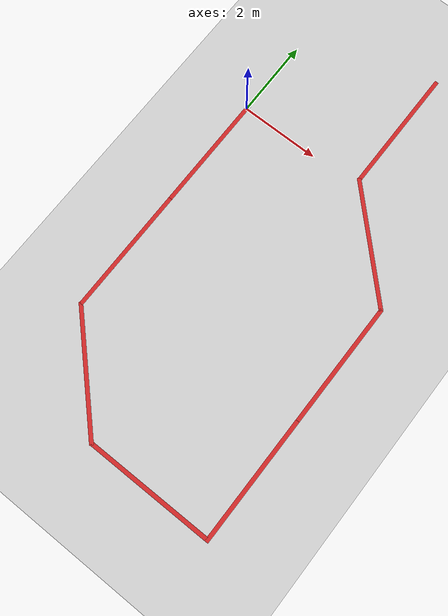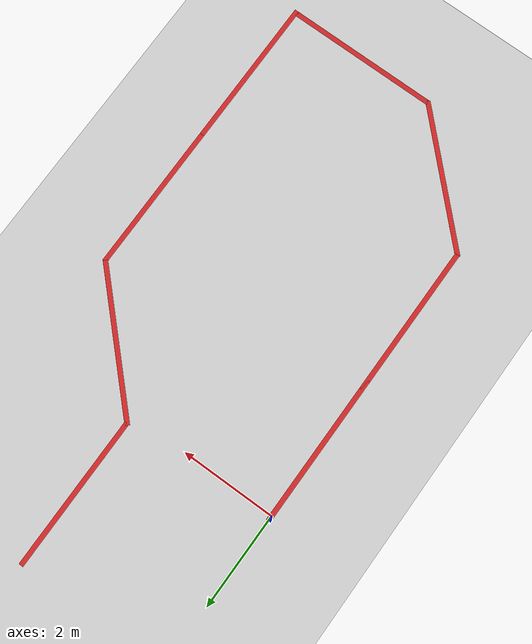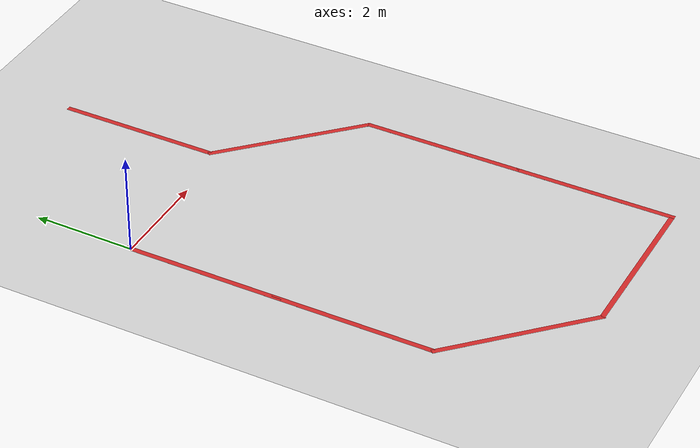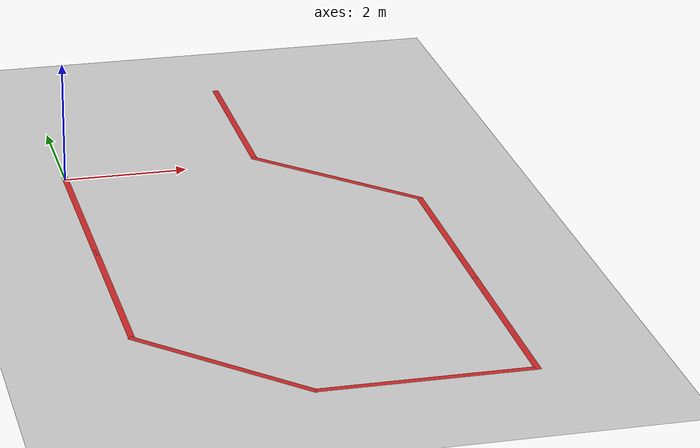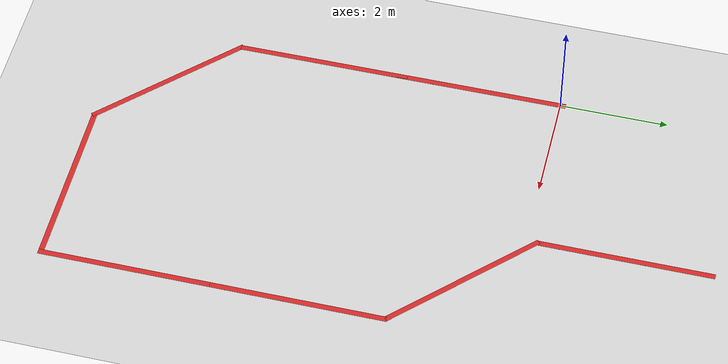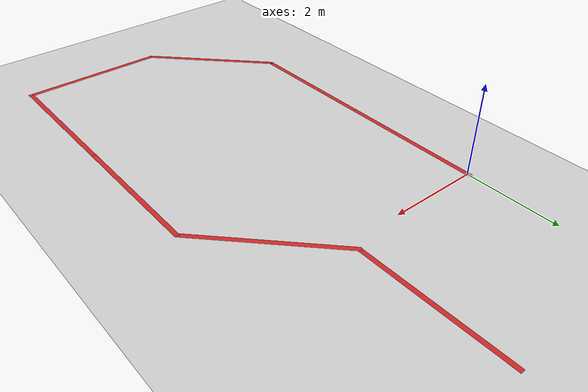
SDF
<sdf version="1.6">
 <world name="default">
  <light name="sun" type="directional">
   <pose>0 0 10 0 -0 0</pose>
   <diffuse>0.8 0.8 0.8 1</diffuse>
   <specular>0.2 0.2 0.2 1</specular>
   <attenuation>
    <range>1000</range>
    <constant>0.9</constant>
    <linear>0.01</linear>
    <quadratic>0.001</quadratic>
   </attenuation>
   <direction>-0.5 0.1 -0.9</direction>
  </light>
  <model name="ground_plane">
   <static>1</static>
   <link name="link">
    <collision name="collision">
     <geometry><plane><normal>0 0 1</normal><size>100 100</size></plane></geometry>
     <surface>
      <contact><collide_bitmask>65535</collide_bitmask></contact>
      <friction><ode><mu>100</mu><mu2>50</mu2></ode></friction>
     </surface>
    </collision>
    <visual name="visual">
     <cast_shadows>0</cast_shadows>
     <geometry><plane><normal>0 0 1</normal><size>100 100</size></plane></geometry>
     <material>
      <script><uri>file://media/materials/scripts/gazebo.material</uri><name>Gazebo/Grey</name></script>
     </material>
    </visual>
   </link>
  </model>
  <gravity>0 0 -9.8</gravity>
  <magnetic_field>6e-06 2.3e-05 -4.2e-05</magnetic_field>
  <atmosphere type="adiabatic"/>
  <physics name="default_physics" default="0" type="ode">
   <max_step_size>0.001</max_step_size>
   <real_time_factor>1</real_time_factor>
   <real_time_update_rate>1000</real_time_update_rate>
  </physics>
  <scene><ambient>0.4 0.4 0.4 1</ambient><background>0.7 0.7 0.7 1</background><shadows>1</shadows></scene>
  <audio><device>default</device></audio>
  <spherical_coordinates>
   <surface_model>EARTH_WGS84</surface_model>
   <latitude_deg>0</latitude_deg>
   <longitude_deg>0</longitude_deg>
   <elevation>0</elevation>
   <heading_deg>0</heading_deg>
  </spherical_coordinates>
  <model name="line">
   <static>1</static>
   <link name="link_ground">
    <collision name="collision">
     <geometry><plane><normal>0 0 1</normal><size>0.1 3.2</size></plane></geometry>
     <surface><friction><ode><mu>100</mu><mu2>50</mu2></ode></friction></surface>
    </collision>
    <visual name="visual_ground">
     <cast_shadows>0</cast_shadows>
     <geometry><plane><normal>0 0 1</normal><size>0.1 3.2</size></plane></geometry>
     <material>
      <script><uri>file://media/materials/scripts/gazebo.material</uri><name>Gazebo/Red</name></script>
     </material>
    </visual>
   </link>
   <pose>0 -1.5 0.01 0 -0 0</pose>
  </model>
  <model name="line_0">
   <static>1</static>
   <link name="link_ground">
    <collision name="collision">
     <geometry><plane><normal>0 0 1</normal><size>0.1 3.2</size></plane></geometry>
     <surface><friction><ode><mu>100</mu><mu2>50</mu2></ode></friction></surface>
    </collision>
    <visual name="visual_ground">
     <cast_shadows>0</cast_shadows>
     <geometry><plane><normal>0 0 1</normal><size>0.1 3.2</size></plane></geometry>
     <material>
      <script><uri>file://media/materials/scripts/gazebo.material</uri><name>Gazebo/Red</name></script>
     </material>
    </visual>
   </link>
   <pose>0 -4.5 0.01 0 -0 0</pose>
  </model>
  <model name="line_1">
   <static>1</static>
   <link name="link_ground">
    <collision name="collision">
     <geometry><plane><normal>0 0 1</normal><size>0.1 3.2</size></plane></geometry>
     <surface><friction><ode><mu>100</mu><mu2>50</mu2></ode></friction></surface>
    </collision>
    <visual name="visual_ground">
     <cast_shadows>0</cast_shadows>
     <geometry><plane><normal>0 0 1</normal><size>0.1 3.2</size></plane></geometry>
     <material>
      <script><uri>file://media/materials/scripts/gazebo.material</uri><name>Gazebo/Red</name></script>
     </material>
    </visual>
   </link>
   <pose>1.1 -7.2 0.01 0 -0 0.785</pose>
  </model>
  <model name="line_2">
   <static>1</static>
   <link name="link_ground">
    <collision name="collision">
     <geometry><plane><normal>0 0 1</normal><size>0.1 3.2</size></plane></geometry>
     <surface><friction><ode><mu>100</mu><mu2>50</mu2></ode></friction></surface>
    </collision>
    <visual name="visual_ground">
     <cast_shadows>0</cast_shadows>
     <geometry><plane><normal>0 0 1</normal><size>0.1 3.2</size></plane></geometry>
     <material>
      <script><uri>file://media/materials/scripts/gazebo.material</uri><name>Gazebo/Red</name></script>
     </material>
    </visual>
   </link>
   <pose>3.8 -8.3 0.01 0 -0 1.57</pose>
  </model>
  <model name="line_3">
   <static>1</static>
   <link name="link_ground">
    <collision name="collision">
     <geometry><plane><normal>0 0 1</normal><size>0.1 3.2</size></plane></geometry>
     <surface><friction><ode><mu>100</mu><mu2>50</mu2></ode></friction></surface>
    </collision>
    <visual name="visual_ground">
     <cast_shadows>0</cast_shadows>
     <geometry><plane><normal>0 0 1</normal><size>0.1 3.2</size></plane></geometry>
     <material>
      <script><uri>file://media/materials/scripts/gazebo.material</uri><name>Gazebo/Red</name></script>
     </material>
    </visual>
   </link>
   <pose>5.43 -6.75 0.01 0 -0 0</pose>
  </model>
  <model name="line_4">
   <static>1</static>
   <link name="link_ground">
    <collision name="collision">
     <geometry><plane><normal>0 0 1</normal><size>0.1 3.2</size></plane></geometry>
     <surface><friction><ode><mu>100</mu><mu2>50</mu2></ode></friction></surface>
    </collision>
    <visual name="visual_ground">
     <cast_shadows>0</cast_shadows>
     <geometry><plane><normal>0 0 1</normal><size>0.1 3.2</size></plane></geometry>
     <material>
      <script><uri>file://media/materials/scripts/gazebo.material</uri><name>Gazebo/Red</name></script>
     </material>
    </visual>
   </link>
   <pose>5.43 -3.6 0.01 0 -0 0</pose>
  </model>
  <model name="line_5">
   <static>1</static>
   <link name="link_ground">
    <collision name="collision">
     <geometry><plane><normal>0 0 1</normal><size>0.1 3.2</size></plane></geometry>
     <surface><friction><ode><mu>100</mu><mu2>50</mu2></ode></friction></surface>
    </collision>
    <visual name="visual_ground">
     <cast_shadows>0</cast_shadows>
     <geometry><plane><normal>0 0 1</normal><size>0.1 3.2</size></plane></geometry>
     <material>
      <script><uri>file://media/materials/scripts/gazebo.material</uri><name>Gazebo/Red</name></script>
     </material>
    </visual>
   </link>
   <pose>4.3 -0.9 0.01 0 -0 0.785</pose>
  </model>
  <model name="line_6">
   <static>1</static>
   <link name="link_ground">
    <collision name="collision">
     <geometry><plane><normal>0 0 1</normal><size>0.1 3.2</size></plane></geometry>
     <surface><friction><ode><mu>100</mu><mu2>50</mu2></ode></friction></surface>
    </collision>
    <visual name="visual_ground">
     <cast_shadows>0</cast_shadows>
     <geometry><plane><normal>0 0 1</normal><size>0.1 3.2</size></plane></geometry>
     <material>
      <script><uri>file://media/materials/scripts/gazebo.material</uri><name>Gazebo/Red</name></script>
     </material>
    </visual>
   </link>
   <pose>3.2 1.8 0.01 0 -0 0</pose>
  </model>
 </world>
</sdf>
